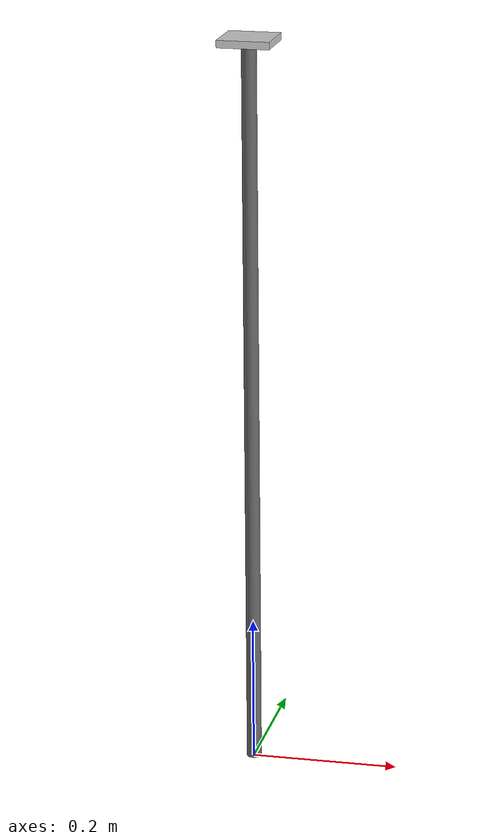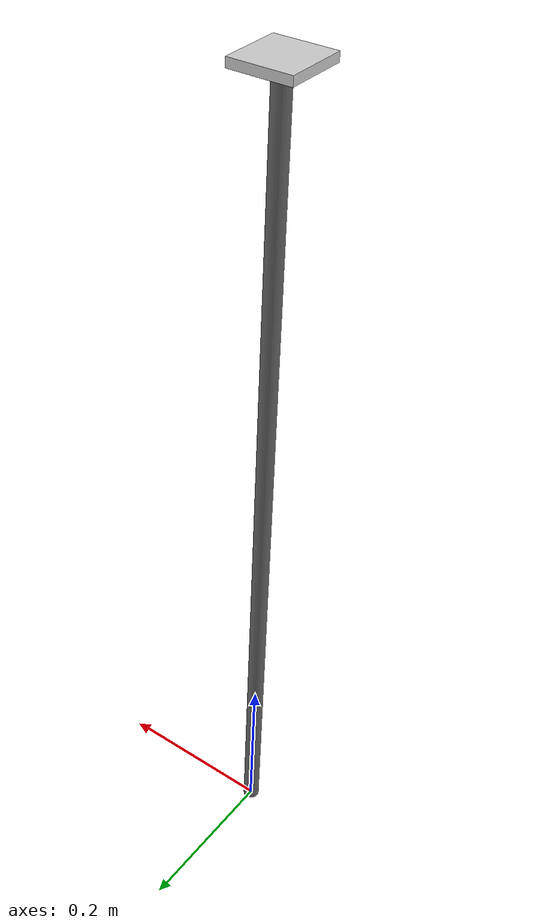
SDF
<?xml version="1.0"?>
<sdf version="1.6">
  <model name="plate_stand">
    <static>true</static>
    <link name="link">
      <!-- Cylindrical stand (diameter 0.2m, height 1m) at bottom -->
      <collision name="stand_collision">
        <pose>0 0 0.5 0 0 0</pose>
        <geometry>
          <cylinder>
            <radius>0.01</radius>
            <length>1</length>
          </cylinder>
        </geometry>
      </collision>
      <visual name="stand_visual">
        <pose>0 0 0.5 0 0 0</pose>
        <geometry>
          <cylinder>
            <radius>0.01</radius>
            <length>1</length>
          </cylinder>
        </geometry>
        <material>
          <ambient>0.3 0.3 0.3 1</ambient>
          <diffuse>0.4 0.4 0.4 1</diffuse>
          <specular>0.5 0.5 0.5 1</specular>
        </material>
      </visual>

      <!-- Plate (0.07 x 0.07 x 0.01m) on top of cylinder -->
      <collision name="plate_collision">
        <pose>0 0 1.005 0 0 0</pose>
        <geometry>
          <box>
            <size>0.07 0.07 0.01</size>
          </box>
        </geometry>
      </collision>
      <visual name="plate_visual">
        <pose>0 0 1.005 0 0 0</pose>
        <geometry>
          <box>
            <size>0.07 0.07 0.01</size>
          </box>
        </geometry>
        <material>
          <ambient>0.7 0.7 0.7 1</ambient>
          <diffuse>0.8 0.8 0.8 1</diffuse>
          <specular>0.3 0.3 0.3 1</specular>
        </material>
      </visual>
    </link>
  </model>
</sdf>
